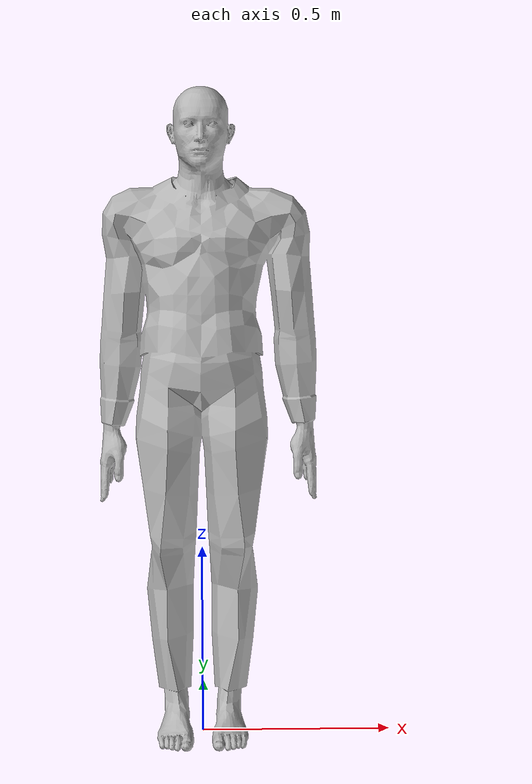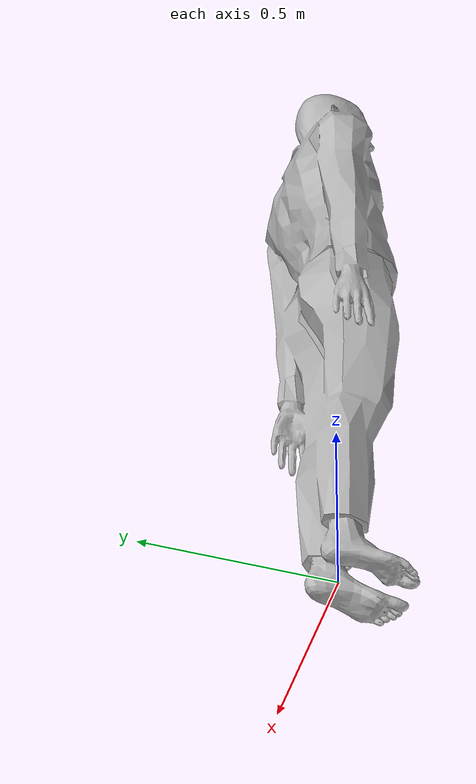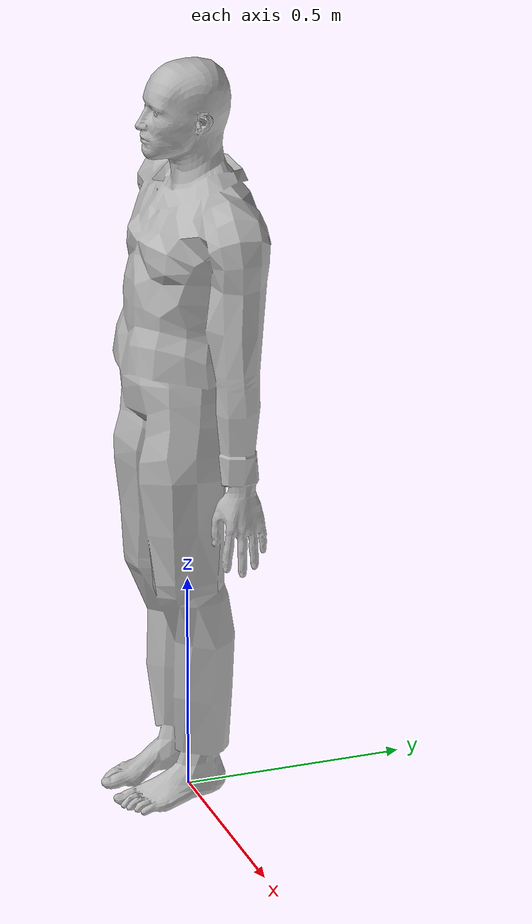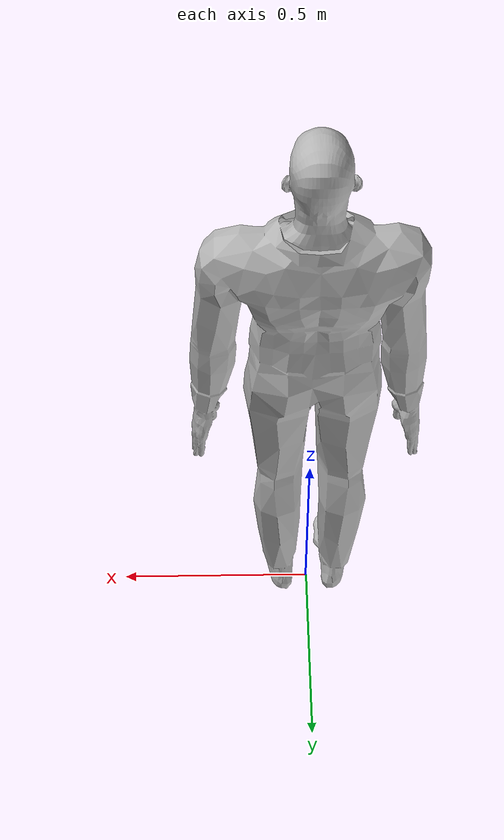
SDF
<?xml version="1.0" ?>
<sdf version="1.8">
  <model name="human_actor">
    <static>true</static>
    <link name="base_link">
      <pose>0 0 0.85 0 0 0</pose>
      <visual name="visual">
        <geometry>
          <mesh>
            <uri>model://WalkingActor_purple/meshes/walk.dae</uri>
            <scale>1 1 1</scale>
          </mesh>
        </geometry>
      </visual>
    </link>
  </model>
</sdf>
